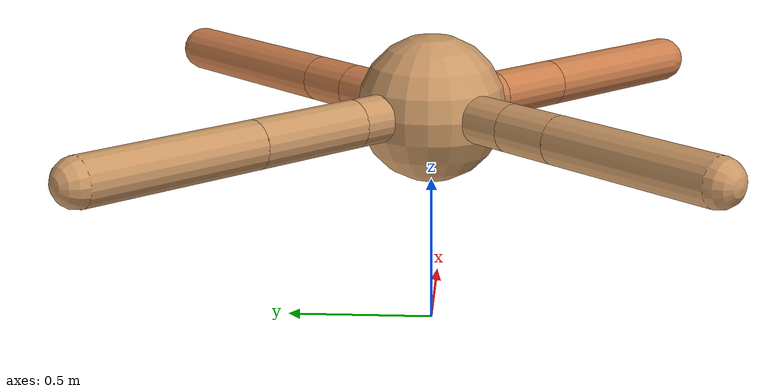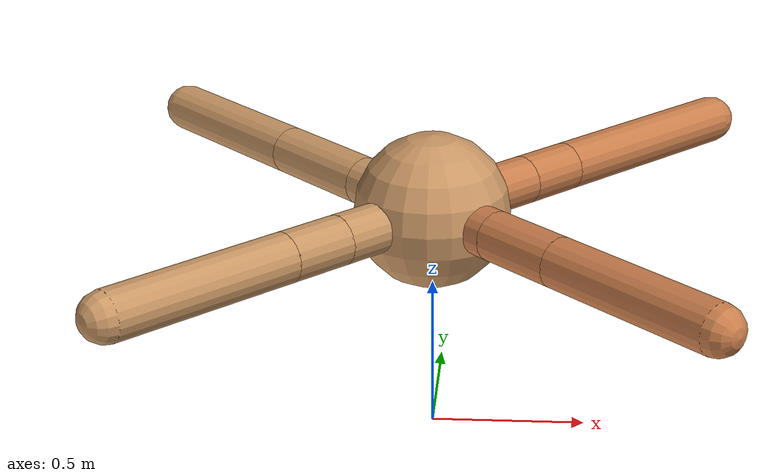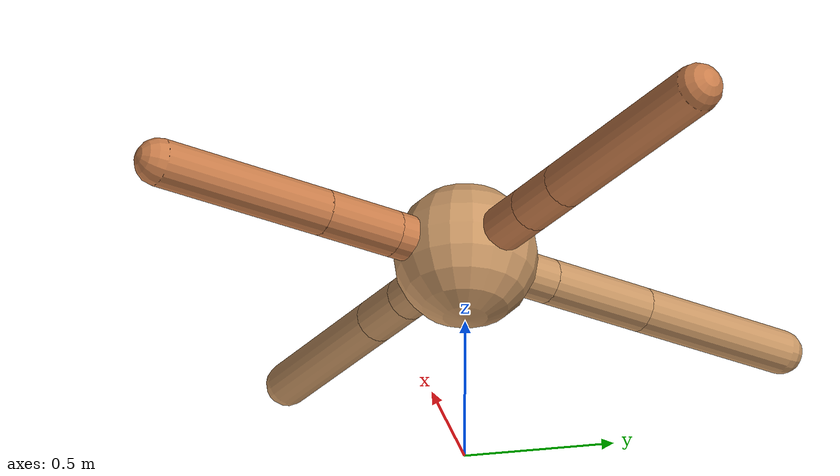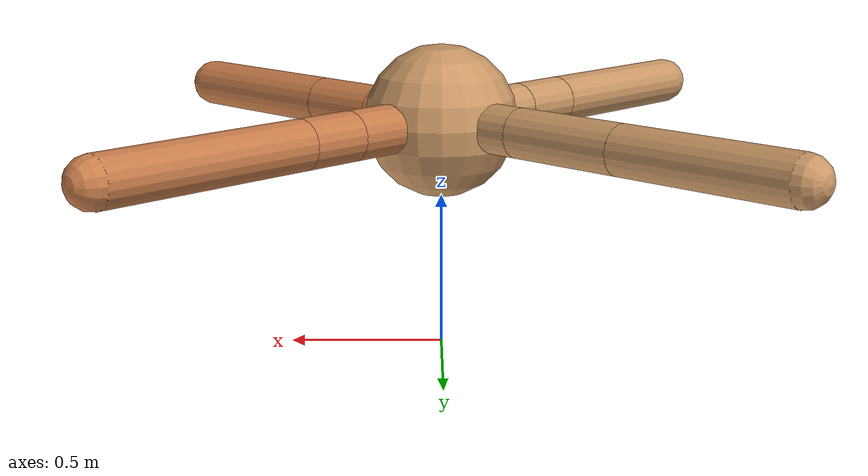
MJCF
<mujoco model="ant">
  <compiler angle="degree" coordinate="local" inertiafromgeom="true" />
  <option integrator="RK4" timestep="0.01" />
  <custom>
    <numeric data="0.0 0.0 0.55 1.0 0.0 0.0 0.0 0.0 1.0 0.0 -1.0 0.0 -1.0 0.0 1.0" name="init_qpos" />
  </custom>
  <default>
    <joint armature="1" damping="1" limited="true" />
    <geom conaffinity="0" condim="3" density="5.0" friction="1.5 0.1 0.1" margin="0.01" rgba="0.8 0.6 0.4 1" />
  </default>
  <worldbody>
    <body name="torso" pos="0 0 0.75">
      <geom name="torso_geom" pos="0 0 0" size="0.25" type="sphere" />

      <body name="front_left_leg" pos="0 0 0">
        <geom fromto="0.0 0.0 0.0 0.2833426429648864 0.2833426429648864 0.0" name="aux_1_geom" size="0.08" type="capsule" rgba=".8 .5 .3 1" />
        <body name="aux_1" pos="0.2833426429648864 0.2833426429648864 0.0">
          <joint axis="0 0 1" name="hip_1" pos="0.0 0.0 0.0" range="-40 40" type="hinge" />
          <geom fromto="0.0 0.0 0.0 0.13867218408988366 0.13867218408988366 0.0" name="left_leg_geom" size="0.08" type="capsule" rgba=".8 .5 .3 1" />
          <body pos="0.13867218408988366 0.13867218408988366 0.0" name="front_left_foot">
            <joint axis="-1 1 0" name="ankle_1" pos="0.0 0.0 0.0" range="30 100" type="hinge" />
            <geom fromto="0.0 0.0 0.0 0.5208013176567419 0.5208013176567419 0.0" name="left_ankle_geom" size="0.08" type="capsule" rgba=".8 .5 .3 1" />
          </body>
        </body>
      </body>
      <body name="front_right_leg" pos="0 0 0">
        <geom fromto="0.0 0.0 0.0 -0.2403119660321842 0.2403119660321842 0.0" name="aux_2_geom" size="0.08" type="capsule" />
        <body name="aux_2" pos="-0.2403119660321842 0.2403119660321842 0.0">
          <joint axis="0 0 1" name="hip_2" pos="0.0 0.0 0.0" range="-40 40" type="hinge" />
          <geom fromto="0.0 0.0 0.0 -0.2798926808891782 0.2798926808891782 0.0" name="right_leg_geom" size="0.08" type="capsule" />
          <body pos="-0.2798926808891782 0.2798926808891782 0.0" name="front_right_foot">
            <joint axis="1 1 0" name="ankle_2" pos="0.0 0.0 0.0" range="-100 -30" type="hinge" />
            <geom fromto="0.0 0.0 0.0 -0.439197534206629 0.439197534206629 0.0" name="right_ankle_geom" size="0.08" type="capsule" />
          </body>
        </body>
      </body>
      <body name="left_back_leg" pos="0 0 0">
        <geom fromto="0.0 0.0 0.0 -0.26793570322074445 -0.26793570322074445 0.0" name="aux_3_geom" size="0.08" type="capsule" />
        <body name="aux_3" pos="-0.26793570322074445 -0.26793570322074445 0.0">
          <joint axis="0 0 1" name="hip_3" pos="0.0 0.0 0.0" range="-40 40" type="hinge" />
          <geom fromto="0.0 0.0 0.0 -0.14400718309818947 -0.14400718309818947 0.0" name="back_leg_geom" size="0.08" type="capsule" />
          <body pos="-0.14400718309818947 -0.14400718309818947 0.0" name="left_back_foot">
            <joint axis="-1 1 0" name="ankle_3" pos="0.0 0.0 0.0" range="-100 -30" type="hinge" />
            <geom fromto="0.0 0.0 0.0 -0.4432945917347933 -0.4432945917347933 0.0" name="third_ankle_geom" size="0.08" type="capsule" />
          </body>
        </body>
      </body>
      <body name="right_back_leg" pos="0 0 0">
        <geom fromto="0.0 0.0 0.0 0.20754867182029146 -0.20754867182029146 0.0" name="aux_4_geom" size="0.08" type="capsule" rgba=".8 .5 .3 1" />
        <body name="aux_4" pos="0.20754867182029146 -0.20754867182029146 0.0">
          <joint axis="0 0 1" name="hip_4" pos="0.0 0.0 0.0" range="-40 40" type="hinge" />
          <geom fromto="0.0 0.0 0.0 0.19394027320916477 -0.19394027320916477 0.0" name="rightback_leg_geom" size="0.08" type="capsule" rgba=".8 .5 .3 1" />
          <body pos="0.19394027320916477 -0.19394027320916477 0.0" name="right_back_foot">
            <joint axis="1 1 0" name="ankle_4" pos="0.0 0.0 0.0" range="30 100" type="hinge" />
            <geom fromto="0.0 0.0 0.0 0.43676412278453774 -0.43676412278453774 0.0" name="fourth_ankle_geom" size="0.08" type="capsule" rgba=".8 .5 .3 1" />
          </body>
        </body>
      </body>
    </body>
  </worldbody>
  <actuator>
    <motor ctrllimited="true" ctrlrange="-1.0 1.0" joint="hip_4" gear="150" />
    <motor ctrllimited="true" ctrlrange="-1.0 1.0" joint="ankle_4" gear="150" />
    <motor ctrllimited="true" ctrlrange="-1.0 1.0" joint="hip_1" gear="150" />
    <motor ctrllimited="true" ctrlrange="-1.0 1.0" joint="ankle_1" gear="150" />
    <motor ctrllimited="true" ctrlrange="-1.0 1.0" joint="hip_2" gear="150" />
    <motor ctrllimited="true" ctrlrange="-1.0 1.0" joint="ankle_2" gear="150" />
    <motor ctrllimited="true" ctrlrange="-1.0 1.0" joint="hip_3" gear="150" />
    <motor ctrllimited="true" ctrlrange="-1.0 1.0" joint="ankle_3" gear="150" />
  </actuator>
</mujoco>
